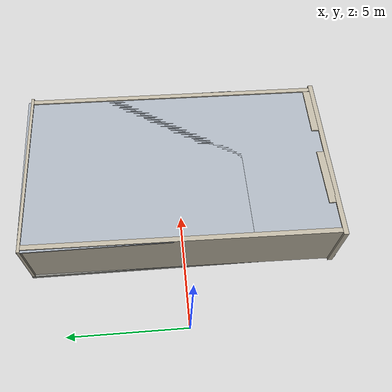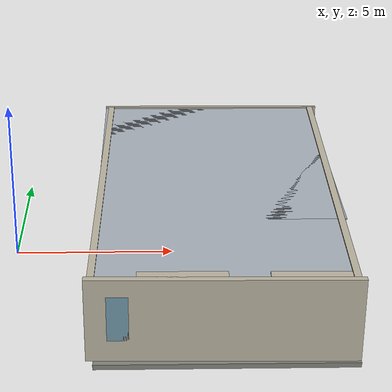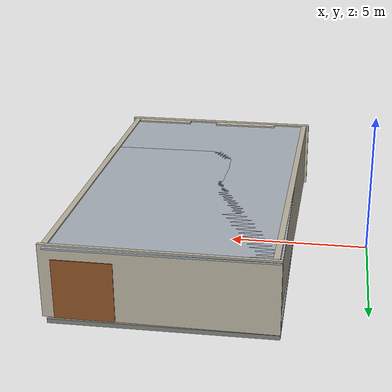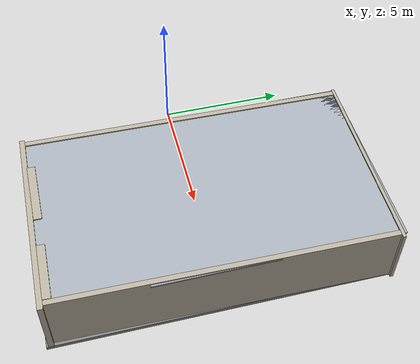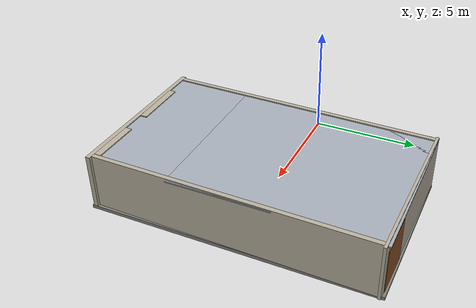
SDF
<?xml version="1.0"?>
<sdf version="1.10">
  <world name="deltaseek_ifc_nominal_hall_b_hall_b_task">
    <physics name="default_physics" type="ignored">
      <max_step_size>0.003</max_step_size>
      <real_time_factor>1.0</real_time_factor>
    </physics>
    <plugin filename="gz-sim-physics-system" name="gz::sim::systems::Physics" />
    <plugin filename="gz-sim-user-commands-system" name="gz::sim::systems::UserCommands" />
    <plugin filename="gz-sim-scene-broadcaster-system" name="gz::sim::systems::SceneBroadcaster" />
    <plugin filename="gz-sim-sensors-system" name="gz::sim::systems::Sensors">
      <render_engine>ogre2</render_engine>
    </plugin>
    <plugin filename="gz-sim-imu-system" name="gz::sim::systems::Imu" />
    <gravity>0 0 -9.81</gravity>
    <scene>
      <ambient>0.55 0.55 0.55 1</ambient>
      <background>0.78 0.84 0.92 1</background>
      <shadows>false</shadows>
    </scene>
    <light type="directional" name="sun">
      <cast_shadows>false</cast_shadows>
      <pose>0 0 10 0 0 0</pose>
      <diffuse>0.9 0.9 0.9 1</diffuse>
      <direction>-0.4 0.2 -0.9</direction>
    </light>
    <model name="ifc_05LeiFLbH7dBxLmOb3F9cv_9a50bce1">
      <static>true</static>
      <pose>8.891095 6.334841 1.0287 0 0 3.1273035</pose>
      <link name="link">
        <collision name="collision">
          <geometry>
            <box>
              <size>1.9812 0.174625 2.0574</size>
            </box>
          </geometry>
        </collision>
        <visual name="visual">
          <geometry>
            <box>
              <size>1.9812 0.174625 2.0574</size>
            </box>
          </geometry>
          <material>
            <ambient>0.55 0.32 0.14 1</ambient>
            <diffuse>0.55 0.32 0.14 1</diffuse>
          </material>
        </visual>
      </link>
    </model>
    <model name="ifc_0KvanlNQrCphrCb4tAxXpN_7b0e35a5">
      <static>true</static>
      <pose>2.796055 0.104399 1.275 0 0 -1.58651771</pose>
      <link name="link">
        <collision name="collision">
          <geometry>
            <box>
              <size>12.510271 0.2032 2.55</size>
            </box>
          </geometry>
        </collision>
        <visual name="visual">
          <geometry>
            <box>
              <size>12.510271 0.2032 2.55</size>
            </box>
          </geometry>
          <material>
            <ambient>0.72 0.69 0.62 1</ambient>
            <diffuse>0.72 0.69 0.62 1</diffuse>
          </material>
        </visual>
      </link>
    </model>
    <model name="ifc_0KvanlNQrCphrCb4tAxkBj_11e01c23">
      <static>true</static>
      <pose>9.968354 -0.003231 1.275 0 0 -1.58651771</pose>
      <link name="link">
        <collision name="collision">
          <geometry>
            <box>
              <size>12.520544 0.2032 2.55</size>
            </box>
          </geometry>
        </collision>
        <visual name="visual">
          <geometry>
            <box>
              <size>12.520544 0.2032 2.55</size>
            </box>
          </geometry>
          <material>
            <ambient>0.72 0.69 0.62 1</ambient>
            <diffuse>0.72 0.69 0.62 1</diffuse>
          </material>
        </visual>
      </link>
    </model>
    <model name="ifc_0KvanlNQrCphrCb4tAxkG7_09707822">
      <static>true</static>
      <pose>6.491373 6.369133 1.275 0 0 3.1273035</pose>
      <link name="link">
        <collision name="collision">
          <geometry>
            <box>
              <size>7.585712 0.123825 2.55</size>
            </box>
          </geometry>
        </collision>
        <visual name="visual">
          <geometry>
            <box>
              <size>7.585712 0.123825 2.55</size>
            </box>
          </geometry>
          <material>
            <ambient>0.72 0.69 0.62 1</ambient>
            <diffuse>0.72 0.69 0.62 1</diffuse>
          </material>
        </visual>
      </link>
    </model>
    <model name="ifc_0KvanlNQrCphrCb4tAxkvE_19b2a9a4">
      <static>true</static>
      <pose>5.176841 -6.049325 1.275 0 0 3.14159265</pose>
      <link name="link">
        <collision name="collision">
          <geometry>
            <box>
              <size>2.48285 0.3048 2.55</size>
            </box>
          </geometry>
        </collision>
        <visual name="visual">
          <geometry>
            <box>
              <size>2.48285 0.3048 2.55</size>
            </box>
          </geometry>
          <material>
            <ambient>0.72 0.69 0.62 1</ambient>
            <diffuse>0.72 0.69 0.62 1</diffuse>
          </material>
        </visual>
      </link>
    </model>
    <model name="ifc_0KvanlNQrCphrCb4tAxkzA_51982bcb">
      <static>true</static>
      <pose>8.653188 -6.097364 1.275 0 0 3.12587127</pose>
      <link name="link">
        <collision name="collision">
          <geometry>
            <box>
              <size>2.2098 0.3048 2.55</size>
            </box>
          </geometry>
        </collision>
        <visual name="visual">
          <geometry>
            <box>
              <size>2.2098 0.3048 2.55</size>
            </box>
          </geometry>
          <material>
            <ambient>0.72 0.69 0.62 1</ambient>
            <diffuse>0.72 0.69 0.62 1</diffuse>
          </material>
        </visual>
      </link>
    </model>
    <model name="ifc_1abtvTofT8EB1v01F0Dkt3_634e8941">
      <static>true</static>
      <pose>6.301211 -6.308232 1.275 0 0 -0.015721382</pose>
      <link name="link">
        <collision name="collision">
          <geometry>
            <box>
              <size>7.604241 0.2032 2.55</size>
            </box>
          </geometry>
        </collision>
        <visual name="visual">
          <geometry>
            <box>
              <size>7.604241 0.2032 2.55</size>
            </box>
          </geometry>
          <material>
            <ambient>0.72 0.69 0.62 1</ambient>
            <diffuse>0.72 0.69 0.62 1</diffuse>
          </material>
        </visual>
      </link>
    </model>
    <model name="ifc_1s7WttW8LF3wo3GFHzG4HD_4c2d617f">
      <static>true</static>
      <pose>3.407035 -6.262728 1.33985 0 0 3.12587127</pose>
      <link name="link">
        <collision name="collision">
          <geometry>
            <box>
              <size>0.6096 0.2032 1.3716</size>
            </box>
          </geometry>
        </collision>
        <visual name="visual">
          <geometry>
            <box>
              <size>0.6096 0.2032 1.3716</size>
            </box>
          </geometry>
          <material>
            <ambient>0.25 0.55 0.72 0.55</ambient>
            <diffuse>0.25 0.55 0.72 0.55</diffuse>
          </material>
        </visual>
      </link>
    </model>
    <model name="ifc_1s7WttW8LF3wo3GFHzG4IH_cc5592b3">
      <static>true</static>
      <pose>7.322898 -6.318793 1.15985 0 0 3.12587127</pose>
      <link name="link">
        <collision name="collision">
          <geometry>
            <box>
              <size>0.6096 0.2032 1.3716</size>
            </box>
          </geometry>
        </collision>
        <visual name="visual">
          <geometry>
            <box>
              <size>0.6096 0.2032 1.3716</size>
            </box>
          </geometry>
          <material>
            <ambient>0.25 0.55 0.72 0.55</ambient>
            <diffuse>0.25 0.55 0.72 0.55</diffuse>
          </material>
        </visual>
      </link>
    </model>
    <model name="ifc_1s7WttW8LF3wo3GFHzG7VQ_b5bff051">
      <static>true</static>
      <pose>6.4 -0.025 -0.0762 0 0 0</pose>
      <link name="link">
        <collision name="collision">
          <geometry>
            <box>
              <size>7.4 13.05 0.1524</size>
            </box>
          </geometry>
        </collision>
        <visual name="visual">
          <geometry>
            <box>
              <size>7.4 13.05 0.1524</size>
            </box>
          </geometry>
          <material>
            <ambient>0.5 0.5 0.48 1</ambient>
            <diffuse>0.5 0.5 0.48 1</diffuse>
          </material>
        </visual>
      </link>
    </model>
    <model name="ifc_2UiYIxdTHDMQxEBYlcrRAA_d255930a">
      <static>true</static>
      <pose>6.366227 0.062508 2.466975 0 0 0</pose>
      <link name="link">
        <collision name="collision">
          <geometry>
            <box>
              <size>7.197574 12.589517 0.05715</size>
            </box>
          </geometry>
        </collision>
        <visual name="visual">
          <geometry>
            <box>
              <size>7.197574 12.589517 0.05715</size>
            </box>
          </geometry>
          <material>
            <ambient>0.65 0.68 0.72 1</ambient>
            <diffuse>0.65 0.68 0.72 1</diffuse>
          </material>
        </visual>
      </link>
    </model>
    <model name="ifc_2twF3dYLP0A94p8cE1aniu_9a42863e">
      <static>true</static>
      <pose>6.4 1.899848 2.466975 0 0 0</pose>
      <link name="link">
        <collision name="collision">
          <geometry>
            <box>
              <size>7.4 9.200305 0.05715</size>
            </box>
          </geometry>
        </collision>
        <visual name="visual">
          <geometry>
            <box>
              <size>7.4 9.200305 0.05715</size>
            </box>
          </geometry>
          <material>
            <ambient>0.65 0.68 0.72 1</ambient>
            <diffuse>0.65 0.68 0.72 1</diffuse>
          </material>
        </visual>
      </link>
    </model>
    <model name="ifc_unexpected_carton_977aaf63">
      <static>true</static>
      <pose>6.7 -4.5 1.8 0 0 0.42</pose>
      <link name="link">
        <collision name="collision">
          <geometry>
            <box>
              <size>0.45 0.45 0.4</size>
            </box>
          </geometry>
        </collision>
        <visual name="visual">
          <geometry>
            <box>
              <size>0.45 0.45 0.4</size>
            </box>
          </geometry>
          <material>
            <ambient>0.78 0.66 0.42 1</ambient>
            <diffuse>0.78 0.66 0.42 1</diffuse>
          </material>
        </visual>
      </link>
    </model>
    <model name="ifc_unexpected_drum_c5bf14ce">
      <static>true</static>
      <pose>9.2 1.2 0.55 0 0 -0.0157</pose>
      <link name="link">
        <collision name="collision">
          <geometry>
            <box>
              <size>0.6 0.6 1.1</size>
            </box>
          </geometry>
        </collision>
        <visual name="visual">
          <geometry>
            <box>
              <size>0.6 0.6 1.1</size>
            </box>
          </geometry>
          <material>
            <ambient>0.2 0.42 0.3 1</ambient>
            <diffuse>0.2 0.42 0.3 1</diffuse>
          </material>
        </visual>
      </link>
    </model>
    <model name="ifc_unexpected_lowcrate_68b3b921">
      <static>true</static>
      <pose>6.9 -5.5 0.22 0 0 -0.31</pose>
      <link name="link">
        <collision name="collision">
          <geometry>
            <box>
              <size>0.5 0.5 0.45</size>
            </box>
          </geometry>
        </collision>
        <visual name="visual">
          <geometry>
            <box>
              <size>0.5 0.5 0.45</size>
            </box>
          </geometry>
          <material>
            <ambient>0.45 0.47 0.5 1</ambient>
            <diffuse>0.45 0.47 0.5 1</diffuse>
          </material>
        </visual>
      </link>
    </model>
    <model name="ifc_unexpected_stack_f9073135">
      <static>true</static>
      <pose>6.9 -4.6 0.8 0 0 -0.0157</pose>
      <link name="link">
        <collision name="collision">
          <geometry>
            <box>
              <size>1.2 0.9 1.6</size>
            </box>
          </geometry>
        </collision>
        <visual name="visual">
          <geometry>
            <box>
              <size>1.2 0.9 1.6</size>
            </box>
          </geometry>
          <material>
            <ambient>0.62 0.36 0.14 1</ambient>
            <diffuse>0.62 0.36 0.14 1</diffuse>
          </material>
        </visual>
      </link>
    </model>
    <model name="ifc_unexpected_toolbox_0c2fe3d3">
      <static>true</static>
      <pose>4.3 3.6 0.4 0 0 0.86</pose>
      <link name="link">
        <collision name="collision">
          <geometry>
            <box>
              <size>0.8 0.8 0.8</size>
            </box>
          </geometry>
        </collision>
        <visual name="visual">
          <geometry>
            <box>
              <size>0.8 0.8 0.8</size>
            </box>
          </geometry>
          <material>
            <ambient>0.55 0.18 0.16 1</ambient>
            <diffuse>0.55 0.18 0.16 1</diffuse>
          </material>
        </visual>
      </link>
    </model>
  </world>
</sdf>
